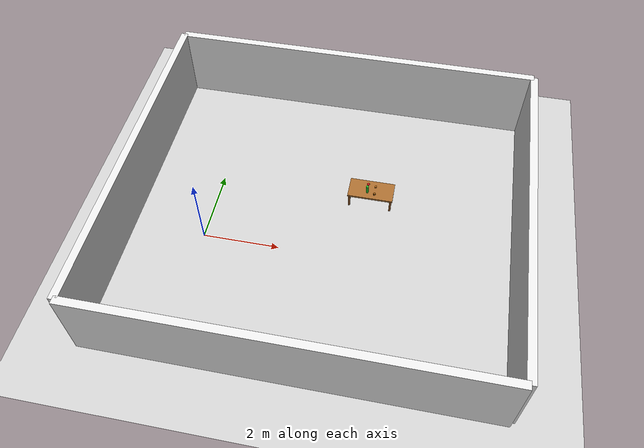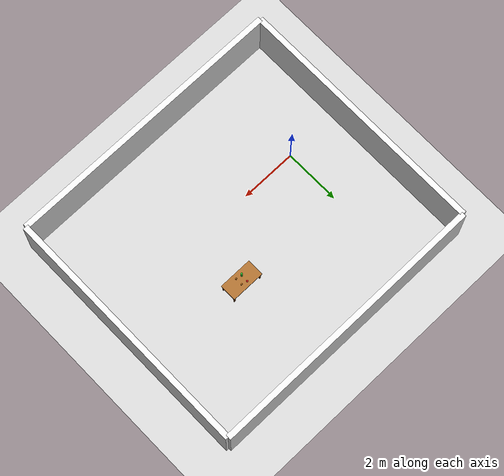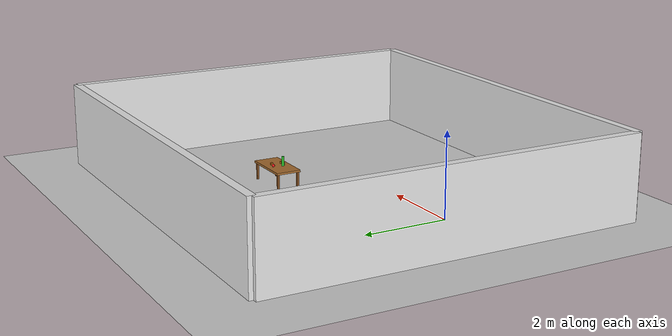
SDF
<?xml version="1.0" ?>
<sdf version="1.6">
  <world name="locobot_table_objects">

    <gravity>0 0 -9.81</gravity>

    <physics type="ode">
      <real_time_update_rate>1000.0</real_time_update_rate>
      <max_step_size>0.001</max_step_size>
      <real_time_factor>1</real_time_factor>
    </physics>

    <scene>
      <ambient>0.6 0.6 0.6 1</ambient>
      <background>0.87 0.92 0.98 1</background>
      <shadows>true</shadows>
    </scene>

    <!-- ── Lighting ────────────────────────────────────────────────────── -->
    <include>
      <uri>model://sun</uri>
    </include>

    <!-- ── Ground plane ───────────────────────────────────────────────── -->
    <include>
      <uri>model://ground_plane</uri>
    </include>

    <!-- ── Gazebo GUI camera pose ─────────────────────────────────────── -->
    <gui fullscreen="0">
      <camera name="user_camera">
        <pose>1.5 -1.5 3.5 0 0.55 0.7</pose>
        <view_controller>orbit</view_controller>
      </camera>
    </gui>

    <!-- ── Room walls (give LIDAR enough geometry for ICP to converge) ──── -->
    <model name="wall_north">
      <static>true</static>
      <pose>3.0 5.5 1.0 0 0 0</pose>
      <link name="link">
        <collision name="c"><geometry><box><size>10.0 0.2 2.0</size></box></geometry></collision>
        <visual name="v"><geometry><box><size>10.0 0.2 2.0</size></box></geometry>
          <material><ambient>0.8 0.8 0.8 1</ambient><diffuse>0.9 0.9 0.9 1</diffuse></material>
        </visual>
      </link>
    </model>
    <model name="wall_south">
      <static>true</static>
      <pose>3.0 -3.5 1.0 0 0 0</pose>
      <link name="link">
        <collision name="c"><geometry><box><size>10.0 0.2 2.0</size></box></geometry></collision>
        <visual name="v"><geometry><box><size>10.0 0.2 2.0</size></box></geometry>
          <material><ambient>0.8 0.8 0.8 1</ambient><diffuse>0.9 0.9 0.9 1</diffuse></material>
        </visual>
      </link>
    </model>
    <model name="wall_east">
      <static>true</static>
      <pose>8.0 1.0 1.0 0 0 0</pose>
      <link name="link">
        <collision name="c"><geometry><box><size>0.2 9.0 2.0</size></box></geometry></collision>
        <visual name="v"><geometry><box><size>0.2 9.0 2.0</size></box></geometry>
          <material><ambient>0.8 0.8 0.8 1</ambient><diffuse>0.9 0.9 0.9 1</diffuse></material>
        </visual>
      </link>
    </model>
    <model name="wall_west">
      <static>true</static>
      <pose>-2.0 1.0 1.0 0 0 0</pose>
      <link name="link">
        <collision name="c"><geometry><box><size>0.2 9.0 2.0</size></box></geometry></collision>
        <visual name="v"><geometry><box><size>0.2 9.0 2.0</size></box></geometry>
          <material><ambient>0.8 0.8 0.8 1</ambient><diffuse>0.9 0.9 0.9 1</diffuse></material>
        </visual>
      </link>
    </model>

    <model name="table">
      <static>true</static>
      <pose>4.1 2.0 0 0 0 0</pose>

      <!-- Table top -->
      <link name="top">
        <pose>0 0 0.425 0 0 0</pose>
        <collision name="top_col">
          <geometry>
            <box><size>1.2 0.6 0.05</size></box>
          </geometry>
        </collision>
        <visual name="top_vis">
          <geometry>
            <box><size>1.2 0.6 0.05</size></box>
          </geometry>
          <material>
            <ambient>0.55 0.35 0.15 1</ambient>
            <diffuse>0.65 0.42 0.18 1</diffuse>
          </material>
        </visual>
      </link>

      <!-- Leg front-left -->
      <link name="leg_fl">
        <pose>-0.55 -0.25 0.20 0 0 0</pose>
        <collision name="c"><geometry><box><size>0.05 0.05 0.40</size></box></geometry></collision>
        <visual name="v"><geometry><box><size>0.05 0.05 0.40</size></box></geometry>
          <material><ambient>0.4 0.25 0.1 1</ambient><diffuse>0.5 0.3 0.12 1</diffuse></material>
        </visual>
      </link>

      <!-- Leg front-right -->
      <link name="leg_fr">
        <pose>-0.55 0.25 0.20 0 0 0</pose>
        <collision name="c"><geometry><box><size>0.05 0.05 0.40</size></box></geometry></collision>
        <visual name="v"><geometry><box><size>0.05 0.05 0.40</size></box></geometry>
          <material><ambient>0.4 0.25 0.1 1</ambient><diffuse>0.5 0.3 0.12 1</diffuse></material>
        </visual>
      </link>

      <!-- Leg back-left -->
      <link name="leg_bl">
        <pose>0.55 -0.25 0.20 0 0 0</pose>
        <collision name="c"><geometry><box><size>0.05 0.05 0.40</size></box></geometry></collision>
        <visual name="v"><geometry><box><size>0.05 0.05 0.40</size></box></geometry>
          <material><ambient>0.4 0.25 0.1 1</ambient><diffuse>0.5 0.3 0.12 1</diffuse></material>
        </visual>
      </link>

      <!-- Leg back-right -->
      <link name="leg_br">
        <pose>0.55 0.25 0.20 0 0 0</pose>
        <collision name="c"><geometry><box><size>0.05 0.05 0.40</size></box></geometry></collision>
        <visual name="v"><geometry><box><size>0.05 0.05 0.40</size></box></geometry>
          <material><ambient>0.4 0.25 0.1 1</ambient><diffuse>0.5 0.3 0.12 1</diffuse></material>
        </visual>
      </link>
    </model>

    <!-- Bottle: inline cylinder so no model-DB download is needed.             -->
    <!-- Body: r=0.033 m, h=0.23 m.  Table top z=0.45, half-height=0.115 → z=0.565 -->
    <model name="bottle">
      <pose>4.0 1.9 0.565 0 0 0</pose>
      <link name="link">
        <collision name="c">
          <geometry><cylinder><radius>0.033</radius><length>0.23</length></cylinder></geometry>
          <surface><friction><ode><mu>0.6</mu><mu2>0.6</mu2></ode></friction></surface>
        </collision>
        <visual name="v">
          <geometry><cylinder><radius>0.033</radius><length>0.23</length></cylinder></geometry>
          <material>
            <ambient>0.1 0.55 0.1 1</ambient>
            <diffuse>0.15 0.7 0.15 1</diffuse>
          </material>
        </visual>
        <inertial>
          <mass>0.5</mass>
          <inertia><ixx>5.2e-4</ixx><iyy>5.2e-4</iyy><izz>2.7e-5</izz>
                   <ixy>0</ixy><ixz>0</ixz><iyz>0</iyz></inertia>
        </inertial>
      </link>
    </model>

    <!-- Wood cube A  (5 cm × 5 cm × 5 cm; centre at z = 0.475) -->
    <model name="wood_cube_a">
      <pose>4.2 2.1 0.475 0 0 0</pose>
      <link name="link">
        <collision name="c">
          <geometry><box><size>0.05 0.05 0.05</size></box></geometry>
          <surface><friction><ode><mu>0.8</mu><mu2>0.8</mu2></ode></friction></surface>
        </collision>
        <visual name="v">
          <geometry><box><size>0.05 0.05 0.05</size></box></geometry>
          <material>
            <ambient>0.6 0.3 0.05 1</ambient>
            <diffuse>0.7 0.4 0.08 1</diffuse>
          </material>
        </visual>
        <inertial>
          <mass>0.1</mass>
          <inertia><ixx>4.2e-5</ixx><iyy>4.2e-5</iyy><izz>4.2e-5</izz>
                   <ixy>0</ixy><ixz>0</ixz><iyz>0</iyz></inertia>
        </inertial>
      </link>
    </model>

    <!-- Wood cube B  (5 cm × 5 cm × 5 cm; offset slightly) -->
    <model name="wood_cube_b">
      <pose>4.2 1.85 0.475 0 0 0.4</pose>
      <link name="link">
        <collision name="c">
          <geometry><box><size>0.05 0.05 0.05</size></box></geometry>
          <surface><friction><ode><mu>0.8</mu><mu2>0.8</mu2></ode></friction></surface>
        </collision>
        <visual name="v">
          <geometry><box><size>0.05 0.05 0.05</size></box></geometry>
          <material>
            <ambient>0.55 0.28 0.04 1</ambient>
            <diffuse>0.65 0.38 0.07 1</diffuse>
          </material>
        </visual>
        <inertial>
          <mass>0.1</mass>
          <inertia><ixx>4.2e-5</ixx><iyy>4.2e-5</iyy><izz>4.2e-5</izz>
                   <ixy>0</ixy><ixz>0</ixz><iyz>0</iyz></inertia>
        </inertial>
      </link>
    </model>

    <!-- Ball  (radius 0.035 m; centre at z = 0.485) -->
    <model name="ball">
      <pose>4.0 2.15 0.485 0 0 0</pose>
      <link name="link">
        <collision name="c">
          <geometry><sphere><radius>0.035</radius></sphere></geometry>
          <surface><friction><ode><mu>0.6</mu><mu2>0.6</mu2></ode></friction></surface>
        </collision>
        <visual name="v">
          <geometry><sphere><radius>0.035</radius></sphere></geometry>
          <material>
            <ambient>0.7 0.05 0.05 1</ambient>
            <diffuse>0.85 0.08 0.08 1</diffuse>
          </material>
        </visual>
        <inertial>
          <mass>0.156</mass>
          <inertia><ixx>8.76e-5</ixx><iyy>8.76e-5</iyy><izz>8.76e-5</izz>
                   <ixy>0</ixy><ixz>0</ixz><iyz>0</iyz></inertia>
        </inertial>
      </link>
    </model>

  </world>
</sdf>
